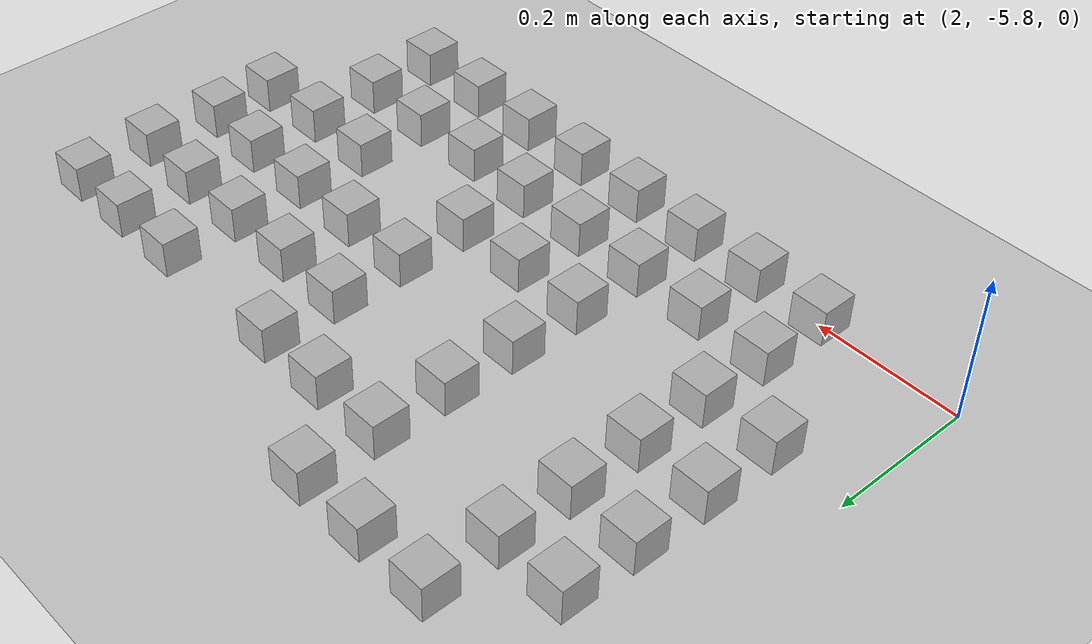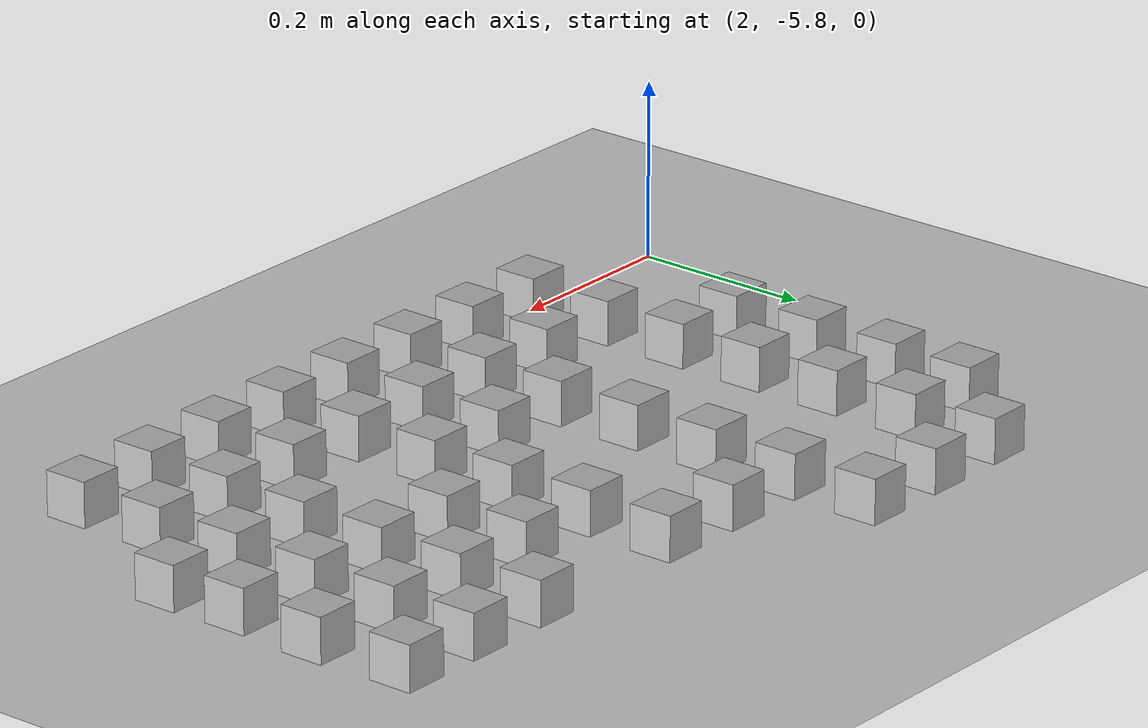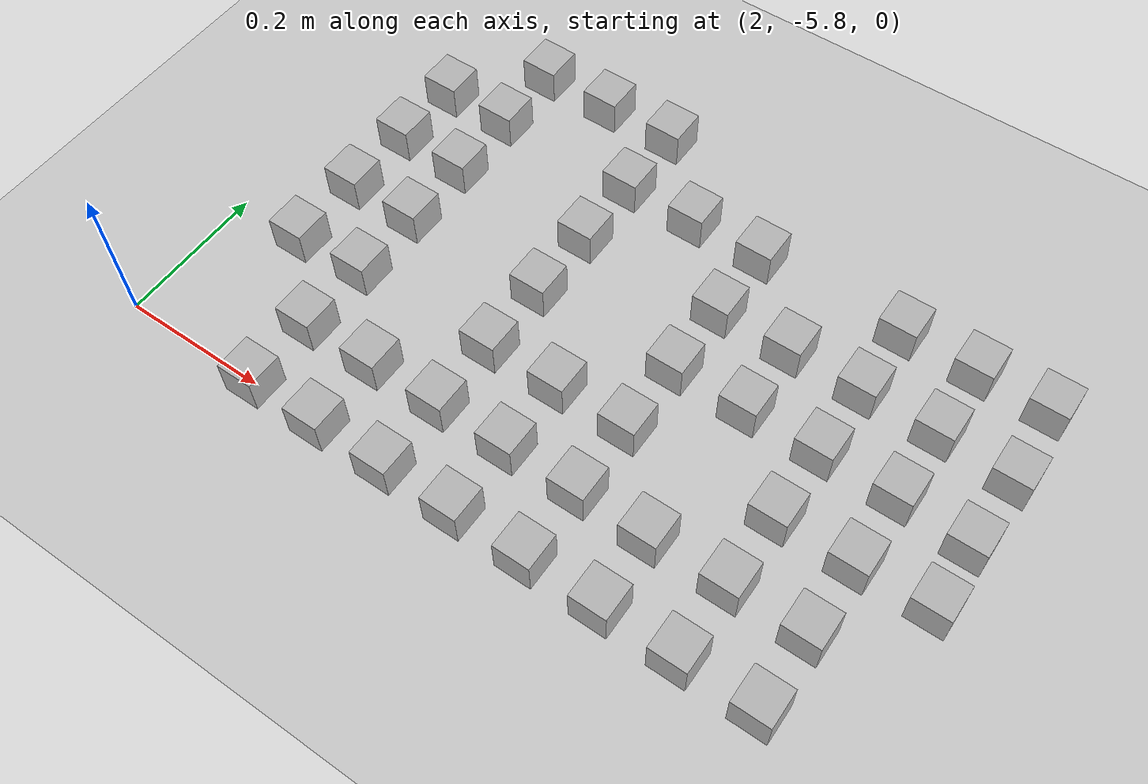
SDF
<sdf version="1.6">
 <world name="default">
  <model name="ground_plane">
   <static>1</static>
   <link name="link">
    <collision name="collision">
     <geometry><plane><normal>0 0 1</normal><size>100 100</size></plane></geometry>
     <surface><friction><ode><mu>100</mu><mu2>50</mu2></ode></friction></surface>
    </collision>
    <visual name="visual">
     <cast_shadows>0</cast_shadows>
     <geometry><plane><normal>0 0 1</normal><size>100 100</size></plane></geometry>
     <material>
      <script><uri>file://media/materials/scripts/gazebo.material</uri><name>Gazebo/Grey</name></script>
     </material>
    </visual>
   </link>
  </model>
  <model name="at128">
   <static>0</static>
   <link name="link">
    <inertial>
     <mass>0.01</mass>
     <inertia><ixx>4e-05</ixx><ixy>0</ixy><ixz>0</ixz><iyy>4e-05</iyy><iyz>0</iyz><izz>4e-05</izz></inertia>
    </inertial>
    <visual name="visual">
     <geometry><box><size>0.05 0.05 0.05</size></box></geometry>
     <material>
      <script>
       <uri>model://at0/materials/scripts</uri>
       <uri>model://at0/materials/textures</uri>
       <name>at0/Diffuse</name>
      </script>
     </material>
    </visual>
    <collision name="collision">
     <geometry><box><size>0.05 0.05 0.05</size></box></geometry>
     <surface><friction><ode><mu>0.8</mu><mu2>0.7</mu2></ode></friction></surface>
    </collision>
   </link>
   <pose>2.2 -5.8 0.025 0 -0 0</pose>
  </model>
  <model name="at129">
   <static>0</static>
   <link name="link">
    <inertial>
     <mass>0.01</mass>
     <inertia><ixx>4e-05</ixx><ixy>0</ixy><ixz>0</ixz><iyy>4e-05</iyy><iyz>0</iyz><izz>4e-05</izz></inertia>
    </inertial>
    <visual name="visual">
     <geometry><box><size>0.05 0.05 0.05</size></box></geometry>
     <material>
      <script>
       <uri>model://at0/materials/scripts</uri>
       <uri>model://at0/materials/textures</uri>
       <name>at0/Diffuse</name>
      </script>
     </material>
    </visual>
    <collision name="collision">
     <geometry><box><size>0.05 0.05 0.05</size></box></geometry>
     <surface><friction><ode><mu>0.8</mu><mu2>0.7</mu2></ode></friction></surface>
    </collision>
   </link>
   <pose>2.3 -5.8 0.025 0 -0 0</pose>
  </model>
  <model name="at130">
   <static>0</static>
   <link name="link">
    <inertial>
     <mass>0.01</mass>
     <inertia><ixx>4e-05</ixx><ixy>0</ixy><ixz>0</ixz><iyy>4e-05</iyy><iyz>0</iyz><izz>4e-05</izz></inertia>
    </inertial>
    <visual name="visual">
     <geometry><box><size>0.05 0.05 0.05</size></box></geometry>
     <material>
      <script>
       <uri>model://at0/materials/scripts</uri>
       <uri>model://at0/materials/textures</uri>
       <name>at0/Diffuse</name>
      </script>
     </material>
    </visual>
    <collision name="collision">
     <geometry><box><size>0.05 0.05 0.05</size></box></geometry>
     <surface><friction><ode><mu>0.8</mu><mu2>0.7</mu2></ode></friction></surface>
    </collision>
   </link>
   <pose>2.4 -5.8 0.025 0 -0 0</pose>
  </model>
  <model name="at131">
   <static>0</static>
   <link name="link">
    <inertial>
     <mass>0.01</mass>
     <inertia><ixx>4e-05</ixx><ixy>0</ixy><ixz>0</ixz><iyy>4e-05</iyy><iyz>0</iyz><izz>4e-05</izz></inertia>
    </inertial>
    <visual name="visual">
     <geometry><box><size>0.05 0.05 0.05</size></box></geometry>
     <material>
      <script>
       <uri>model://at0/materials/scripts</uri>
       <uri>model://at0/materials/textures</uri>
       <name>at0/Diffuse</name>
      </script>
     </material>
    </visual>
    <collision name="collision">
     <geometry><box><size>0.05 0.05 0.05</size></box></geometry>
     <surface><friction><ode><mu>0.8</mu><mu2>0.7</mu2></ode></friction></surface>
    </collision>
   </link>
   <pose>2.5 -5.8 0.025 0 -0 0</pose>
  </model>
  <model name="at132">
   <static>0</static>
   <link name="link">
    <inertial>
     <mass>0.01</mass>
     <inertia><ixx>4e-05</ixx><ixy>0</ixy><ixz>0</ixz><iyy>4e-05</iyy><iyz>0</iyz><izz>4e-05</izz></inertia>
    </inertial>
    <visual name="visual">
     <geometry><box><size>0.05 0.05 0.05</size></box></geometry>
     <material>
      <script>
       <uri>model://at0/materials/scripts</uri>
       <uri>model://at0/materials/textures</uri>
       <name>at0/Diffuse</name>
      </script>
     </material>
    </visual>
    <collision name="collision">
     <geometry><box><size>0.05 0.05 0.05</size></box></geometry>
     <surface><friction><ode><mu>0.8</mu><mu2>0.7</mu2></ode></friction></surface>
    </collision>
   </link>
   <pose>2.6 -5.8 0.025 0 -0 0</pose>
  </model>
  <model name="at133">
   <static>0</static>
   <link name="link">
    <inertial>
     <mass>0.01</mass>
     <inertia><ixx>4e-05</ixx><ixy>0</ixy><ixz>0</ixz><iyy>4e-05</iyy><iyz>0</iyz><izz>4e-05</izz></inertia>
    </inertial>
    <visual name="visual">
     <geometry><box><size>0.05 0.05 0.05</size></box></geometry>
     <material>
      <script>
       <uri>model://at0/materials/scripts</uri>
       <uri>model://at0/materials/textures</uri>
       <name>at0/Diffuse</name>
      </script>
     </material>
    </visual>
    <collision name="collision">
     <geometry><box><size>0.05 0.05 0.05</size></box></geometry>
     <surface><friction><ode><mu>0.8</mu><mu2>0.7</mu2></ode></friction></surface>
    </collision>
   </link>
   <pose>2.7 -5.8 0.025 0 -0 0</pose>
  </model>
  <model name="at134">
   <static>0</static>
   <link name="link">
    <inertial>
     <mass>0.01</mass>
     <inertia><ixx>4e-05</ixx><ixy>0</ixy><ixz>0</ixz><iyy>4e-05</iyy><iyz>0</iyz><izz>4e-05</izz></inertia>
    </inertial>
    <visual name="visual">
     <geometry><box><size>0.05 0.05 0.05</size></box></geometry>
     <material>
      <script>
       <uri>model://at0/materials/scripts</uri>
       <uri>model://at0/materials/textures</uri>
       <name>at0/Diffuse</name>
      </script>
     </material>
    </visual>
    <collision name="collision">
     <geometry><box><size>0.05 0.05 0.05</size></box></geometry>
     <surface><friction><ode><mu>0.8</mu><mu2>0.7</mu2></ode></friction></surface>
    </collision>
   </link>
   <pose>2.8 -5.8 0.025 0 -0 0</pose>
  </model>
  <model name="at135">
   <static>0</static>
   <link name="link">
    <inertial>
     <mass>0.01</mass>
     <inertia><ixx>4e-05</ixx><ixy>0</ixy><ixz>0</ixz><iyy>4e-05</iyy><iyz>0</iyz><izz>4e-05</izz></inertia>
    </inertial>
    <visual name="visual">
     <geometry><box><size>0.05 0.05 0.05</size></box></geometry>
     <material>
      <script>
       <uri>model://at0/materials/scripts</uri>
       <uri>model://at0/materials/textures</uri>
       <name>at0/Diffuse</name>
      </script>
     </material>
    </visual>
    <collision name="collision">
     <geometry><box><size>0.05 0.05 0.05</size></box></geometry>
     <surface><friction><ode><mu>0.8</mu><mu2>0.7</mu2></ode></friction></surface>
    </collision>
   </link>
   <pose>2.9 -5.8 0.025 0 -0 0</pose>
  </model>
  <model name="at136">
   <static>0</static>
   <link name="link">
    <inertial>
     <mass>0.01</mass>
     <inertia><ixx>4e-05</ixx><ixy>0</ixy><ixz>0</ixz><iyy>4e-05</iyy><iyz>0</iyz><izz>4e-05</izz></inertia>
    </inertial>
    <visual name="visual">
     <geometry><box><size>0.05 0.05 0.05</size></box></geometry>
     <material>
      <script>
       <uri>model://at0/materials/scripts</uri>
       <uri>model://at0/materials/textures</uri>
       <name>at0/Diffuse</name>
      </script>
     </material>
    </visual>
    <collision name="collision">
     <geometry><box><size>0.05 0.05 0.05</size></box></geometry>
     <surface><friction><ode><mu>0.8</mu><mu2>0.7</mu2></ode></friction></surface>
    </collision>
   </link>
   <pose>2.2 -5.7 0.025 0 -0 0</pose>
  </model>
  <model name="at137">
   <static>0</static>
   <link name="link">
    <inertial>
     <mass>0.01</mass>
     <inertia><ixx>4e-05</ixx><ixy>0</ixy><ixz>0</ixz><iyy>4e-05</iyy><iyz>0</iyz><izz>4e-05</izz></inertia>
    </inertial>
    <visual name="visual">
     <geometry><box><size>0.05 0.05 0.05</size></box></geometry>
     <material>
      <script>
       <uri>model://at0/materials/scripts</uri>
       <uri>model://at0/materials/textures</uri>
       <name>at0/Diffuse</name>
      </script>
     </material>
    </visual>
    <collision name="collision">
     <geometry><box><size>0.05 0.05 0.05</size></box></geometry>
     <surface><friction><ode><mu>0.8</mu><mu2>0.7</mu2></ode></friction></surface>
    </collision>
   </link>
   <pose>2.3 -5.7 0.025 0 -0 0</pose>
  </model>
  <model name="at138">
   <static>0</static>
   <link name="link">
    <inertial>
     <mass>0.01</mass>
     <inertia><ixx>4e-05</ixx><ixy>0</ixy><ixz>0</ixz><iyy>4e-05</iyy><iyz>0</iyz><izz>4e-05</izz></inertia>
    </inertial>
    <visual name="visual">
     <geometry><box><size>0.05 0.05 0.05</size></box></geometry>
     <material>
      <script>
       <uri>model://at0/materials/scripts</uri>
       <uri>model://at0/materials/textures</uri>
       <name>at0/Diffuse</name>
      </script>
     </material>
    </visual>
    <collision name="collision">
     <geometry><box><size>0.05 0.05 0.05</size></box></geometry>
     <surface><friction><ode><mu>0.8</mu><mu2>0.7</mu2></ode></friction></surface>
    </collision>
   </link>
   <pose>2.4 -5.7 0.025 0 -0 0</pose>
  </model>
  <model name="at139">
   <static>0</static>
   <link name="link">
    <inertial>
     <mass>0.01</mass>
     <inertia><ixx>4e-05</ixx><ixy>0</ixy><ixz>0</ixz><iyy>4e-05</iyy><iyz>0</iyz><izz>4e-05</izz></inertia>
    </inertial>
    <visual name="visual">
     <geometry><box><size>0.05 0.05 0.05</size></box></geometry>
     <material>
      <script>
       <uri>model://at0/materials/scripts</uri>
       <uri>model://at0/materials/textures</uri>
       <name>at0/Diffuse</name>
      </script>
     </material>
    </visual>
    <collision name="collision">
     <geometry><box><size>0.05 0.05 0.05</size></box></geometry>
     <surface><friction><ode><mu>0.8</mu><mu2>0.7</mu2></ode></friction></surface>
    </collision>
   </link>
   <pose>2.5 -5.7 0.025 0 -0 0</pose>
  </model>
  <model name="at140">
   <static>0</static>
   <link name="link">
    <inertial>
     <mass>0.01</mass>
     <inertia><ixx>4e-05</ixx><ixy>0</ixy><ixz>0</ixz><iyy>4e-05</iyy><iyz>0</iyz><izz>4e-05</izz></inertia>
    </inertial>
    <visual name="visual">
     <geometry><box><size>0.05 0.05 0.05</size></box></geometry>
     <material>
      <script>
       <uri>model://at0/materials/scripts</uri>
       <uri>model://at0/materials/textures</uri>
       <name>at0/Diffuse</name>
      </script>
     </material>
    </visual>
    <collision name="collision">
     <geometry><box><size>0.05 0.05 0.05</size></box></geometry>
     <surface><friction><ode><mu>0.8</mu><mu2>0.7</mu2></ode></friction></surface>
    </collision>
   </link>
   <pose>2.6 -5.7 0.025 0 -0 0</pose>
  </model>
  <model name="at141">
   <static>0</static>
   <link name="link">
    <inertial>
     <mass>0.01</mass>
     <inertia><ixx>4e-05</ixx><ixy>0</ixy><ixz>0</ixz><iyy>4e-05</iyy><iyz>0</iyz><izz>4e-05</izz></inertia>
    </inertial>
    <visual name="visual">
     <geometry><box><size>0.05 0.05 0.05</size></box></geometry>
     <material>
      <script>
       <uri>model://at0/materials/scripts</uri>
       <uri>model://at0/materials/textures</uri>
       <name>at0/Diffuse</name>
      </script>
     </material>
    </visual>
    <collision name="collision">
     <geometry><box><size>0.05 0.05 0.05</size></box></geometry>
     <surface><friction><ode><mu>0.8</mu><mu2>0.7</mu2></ode></friction></surface>
    </collision>
   </link>
   <pose>2.99664 -5.5962 0.025 0 -0 0</pose>
  </model>
  <model name="at142">
   <static>0</static>
   <link name="link">
    <inertial>
     <mass>0.01</mass>
     <inertia><ixx>4e-05</ixx><ixy>0</ixy><ixz>0</ixz><iyy>4e-05</iyy><iyz>0</iyz><izz>4e-05</izz></inertia>
    </inertial>
    <visual name="visual">
     <geometry><box><size>0.05 0.05 0.05</size></box></geometry>
     <material>
      <script>
       <uri>model://at0/materials/scripts</uri>
       <uri>model://at0/materials/textures</uri>
       <name>at0/Diffuse</name>
      </script>
     </material>
    </visual>
    <collision name="collision">
     <geometry><box><size>0.05 0.05 0.05</size></box></geometry>
     <surface><friction><ode><mu>0.8</mu><mu2>0.7</mu2></ode></friction></surface>
    </collision>
   </link>
   <pose>2.8 -5.7 0.025 0 -0 0</pose>
  </model>
  <model name="at143">
   <static>0</static>
   <link name="link">
    <inertial>
     <mass>0.01</mass>
     <inertia><ixx>4e-05</ixx><ixy>0</ixy><ixz>0</ixz><iyy>4e-05</iyy><iyz>0</iyz><izz>4e-05</izz></inertia>
    </inertial>
    <visual name="visual">
     <geometry><box><size>0.05 0.05 0.05</size></box></geometry>
     <material>
      <script>
       <uri>model://at0/materials/scripts</uri>
       <uri>model://at0/materials/textures</uri>
       <name>at0/Diffuse</name>
      </script>
     </material>
    </visual>
    <collision name="collision">
     <geometry><box><size>0.05 0.05 0.05</size></box></geometry>
     <surface><friction><ode><mu>0.8</mu><mu2>0.7</mu2></ode></friction></surface>
    </collision>
   </link>
   <pose>2.9 -5.7 0.025 0 -0 0</pose>
  </model>
  <model name="at144">
   <static>0</static>
   <link name="link">
    <inertial>
     <mass>0.01</mass>
     <inertia><ixx>4e-05</ixx><ixy>0</ixy><ixz>0</ixz><iyy>4e-05</iyy><iyz>0</iyz><izz>4e-05</izz></inertia>
    </inertial>
    <visual name="visual">
     <geometry><box><size>0.05 0.05 0.05</size></box></geometry>
     <material>
      <script>
       <uri>model://at0/materials/scripts</uri>
       <uri>model://at0/materials/textures</uri>
       <name>at0/Diffuse</name>
      </script>
     </material>
    </visual>
    <collision name="collision">
     <geometry><box><size>0.05 0.05 0.05</size></box></geometry>
     <surface><friction><ode><mu>0.8</mu><mu2>0.7</mu2></ode></friction></surface>
    </collision>
   </link>
   <pose>2.2 -5.6 0.025 0 -0 0</pose>
  </model>
  <model name="at145">
   <static>0</static>
   <link name="link">
    <inertial>
     <mass>0.01</mass>
     <inertia><ixx>4e-05</ixx><ixy>0</ixy><ixz>0</ixz><iyy>4e-05</iyy><iyz>0</iyz><izz>4e-05</izz></inertia>
    </inertial>
    <visual name="visual">
     <geometry><box><size>0.05 0.05 0.05</size></box></geometry>
     <material>
      <script>
       <uri>model://at0/materials/scripts</uri>
       <uri>model://at0/materials/textures</uri>
       <name>at0/Diffuse</name>
      </script>
     </material>
    </visual>
    <collision name="collision">
     <geometry><box><size>0.05 0.05 0.05</size></box></geometry>
     <surface><friction><ode><mu>0.8</mu><mu2>0.7</mu2></ode></friction></surface>
    </collision>
   </link>
   <pose>2.1036 -5.60476 0.025 0 -0 0</pose>
  </model>
  <model name="at146">
   <static>0</static>
   <link name="link">
    <inertial>
     <mass>0.01</mass>
     <inertia><ixx>4e-05</ixx><ixy>0</ixy><ixz>0</ixz><iyy>4e-05</iyy><iyz>0</iyz><izz>4e-05</izz></inertia>
    </inertial>
    <visual name="visual">
     <geometry><box><size>0.05 0.05 0.05</size></box></geometry>
     <material>
      <script>
       <uri>model://at0/materials/scripts</uri>
       <uri>model://at0/materials/textures</uri>
       <name>at0/Diffuse</name>
      </script>
     </material>
    </visual>
    <collision name="collision">
     <geometry><box><size>0.05 0.05 0.05</size></box></geometry>
     <surface><friction><ode><mu>0.8</mu><mu2>0.7</mu2></ode></friction></surface>
    </collision>
   </link>
   <pose>2.4 -5.6 0.025 0 -0 0</pose>
  </model>
  <model name="at147">
   <static>0</static>
   <link name="link">
    <inertial>
     <mass>0.01</mass>
     <inertia><ixx>4e-05</ixx><ixy>0</ixy><ixz>0</ixz><iyy>4e-05</iyy><iyz>0</iyz><izz>4e-05</izz></inertia>
    </inertial>
    <visual name="visual">
     <geometry><box><size>0.05 0.05 0.05</size></box></geometry>
     <material>
      <script>
       <uri>model://at0/materials/scripts</uri>
       <uri>model://at0/materials/textures</uri>
       <name>at0/Diffuse</name>
      </script>
     </material>
    </visual>
    <collision name="collision">
     <geometry><box><size>0.05 0.05 0.05</size></box></geometry>
     <surface><friction><ode><mu>0.8</mu><mu2>0.7</mu2></ode></friction></surface>
    </collision>
   </link>
   <pose>2.5 -5.6 0.025 0 -0 0</pose>
  </model>
  <model name="at148">
   <static>0</static>
   <link name="link">
    <inertial>
     <mass>0.01</mass>
     <inertia><ixx>4e-05</ixx><ixy>0</ixy><ixz>0</ixz><iyy>4e-05</iyy><iyz>0</iyz><izz>4e-05</izz></inertia>
    </inertial>
    <visual name="visual">
     <geometry><box><size>0.05 0.05 0.05</size></box></geometry>
     <material>
      <script>
       <uri>model://at0/materials/scripts</uri>
       <uri>model://at0/materials/textures</uri>
       <name>at0/Diffuse</name>
      </script>
     </material>
    </visual>
    <collision name="collision">
     <geometry><box><size>0.05 0.05 0.05</size></box></geometry>
     <surface><friction><ode><mu>0.8</mu><mu2>0.7</mu2></ode></friction></surface>
    </collision>
   </link>
   <pose>2.6 -5.6 0.025 0 -0 0</pose>
  </model>
  <model name="at149">
   <static>0</static>
   <link name="link">
    <inertial>
     <mass>0.01</mass>
     <inertia><ixx>4e-05</ixx><ixy>0</ixy><ixz>0</ixz><iyy>4e-05</iyy><iyz>0</iyz><izz>4e-05</izz></inertia>
    </inertial>
    <visual name="visual">
     <geometry><box><size>0.05 0.05 0.05</size></box></geometry>
     <material>
      <script>
       <uri>model://at0/materials/scripts</uri>
       <uri>model://at0/materials/textures</uri>
       <name>at0/Diffuse</name>
      </script>
     </material>
    </visual>
    <collision name="collision">
     <geometry><box><size>0.05 0.05 0.05</size></box></geometry>
     <surface><friction><ode><mu>0.8</mu><mu2>0.7</mu2></ode></friction></surface>
    </collision>
   </link>
   <pose>2.69719 -5.70241 0.025 0 -0 0</pose>
  </model>
  <model name="at150">
   <static>0</static>
   <link name="link">
    <inertial>
     <mass>0.01</mass>
     <inertia><ixx>4e-05</ixx><ixy>0</ixy><ixz>0</ixz><iyy>4e-05</iyy><iyz>0</iyz><izz>4e-05</izz></inertia>
    </inertial>
    <visual name="visual">
     <geometry><box><size>0.05 0.05 0.05</size></box></geometry>
     <material>
      <script>
       <uri>model://at0/materials/scripts</uri>
       <uri>model://at0/materials/textures</uri>
       <name>at0/Diffuse</name>
      </script>
     </material>
    </visual>
    <collision name="collision">
     <geometry><box><size>0.05 0.05 0.05</size></box></geometry>
     <surface><friction><ode><mu>0.8</mu><mu2>0.7</mu2></ode></friction></surface>
    </collision>
   </link>
   <pose>2.8 -5.6 0.025 0 -0 0</pose>
  </model>
  <model name="at151">
   <static>0</static>
   <link name="link">
    <inertial>
     <mass>0.01</mass>
     <inertia><ixx>4e-05</ixx><ixy>0</ixy><ixz>0</ixz><iyy>4e-05</iyy><iyz>0</iyz><izz>4e-05</izz></inertia>
    </inertial>
    <visual name="visual">
     <geometry><box><size>0.05 0.05 0.05</size></box></geometry>
     <material>
      <script>
       <uri>model://at0/materials/scripts</uri>
       <uri>model://at0/materials/textures</uri>
       <name>at0/Diffuse</name>
      </script>
     </material>
    </visual>
    <collision name="collision">
     <geometry><box><size>0.05 0.05 0.05</size></box></geometry>
     <surface><friction><ode><mu>0.8</mu><mu2>0.7</mu2></ode></friction></surface>
    </collision>
   </link>
   <pose>2.9 -5.6 0.025 0 -0 0</pose>
  </model>
  <model name="at152">
   <static>0</static>
   <link name="link">
    <inertial>
     <mass>0.01</mass>
     <inertia><ixx>4e-05</ixx><ixy>0</ixy><ixz>0</ixz><iyy>4e-05</iyy><iyz>0</iyz><izz>4e-05</izz></inertia>
    </inertial>
    <visual name="visual">
     <geometry><box><size>0.05 0.05 0.05</size></box></geometry>
     <material>
      <script>
       <uri>model://at0/materials/scripts</uri>
       <uri>model://at0/materials/textures</uri>
       <name>at0/Diffuse</name>
      </script>
     </material>
    </visual>
    <collision name="collision">
     <geometry><box><size>0.05 0.05 0.05</size></box></geometry>
     <surface><friction><ode><mu>0.8</mu><mu2>0.7</mu2></ode></friction></surface>
    </collision>
   </link>
   <pose>2.2 -5.5 0.025 0 -0 0</pose>
  </model>
  <model name="at153">
   <static>0</static>
   <link name="link">
    <inertial>
     <mass>0.01</mass>
     <inertia><ixx>4e-05</ixx><ixy>0</ixy><ixz>0</ixz><iyy>4e-05</iyy><iyz>0</iyz><izz>4e-05</izz></inertia>
    </inertial>
    <visual name="visual">
     <geometry><box><size>0.05 0.05 0.05</size></box></geometry>
     <material>
      <script>
       <uri>model://at0/materials/scripts</uri>
       <uri>model://at0/materials/textures</uri>
       <name>at0/Diffuse</name>
      </script>
     </material>
    </visual>
    <collision name="collision">
     <geometry><box><size>0.05 0.05 0.05</size></box></geometry>
     <surface><friction><ode><mu>0.8</mu><mu2>0.7</mu2></ode></friction></surface>
    </collision>
   </link>
   <pose>2.10354 -5.49982 0.025 0 -0 0</pose>
  </model>
  <model name="at154">
   <static>0</static>
   <link name="link">
    <inertial>
     <mass>0.01</mass>
     <inertia><ixx>4e-05</ixx><ixy>0</ixy><ixz>0</ixz><iyy>4e-05</iyy><iyz>0</iyz><izz>4e-05</izz></inertia>
    </inertial>
    <visual name="visual">
     <geometry><box><size>0.05 0.05 0.05</size></box></geometry>
     <material>
      <script>
       <uri>model://at0/materials/scripts</uri>
       <uri>model://at0/materials/textures</uri>
       <name>at0/Diffuse</name>
      </script>
     </material>
    </visual>
    <collision name="collision">
     <geometry><box><size>0.05 0.05 0.05</size></box></geometry>
     <surface><friction><ode><mu>0.8</mu><mu2>0.7</mu2></ode></friction></surface>
    </collision>
   </link>
   <pose>2.4 -5.5 0.025 0 -0 0</pose>
  </model>
  <model name="at155">
   <static>0</static>
   <link name="link">
    <inertial>
     <mass>0.01</mass>
     <inertia><ixx>4e-05</ixx><ixy>0</ixy><ixz>0</ixz><iyy>4e-05</iyy><iyz>0</iyz><izz>4e-05</izz></inertia>
    </inertial>
    <visual name="visual">
     <geometry><box><size>0.05 0.05 0.05</size></box></geometry>
     <material>
      <script>
       <uri>model://at0/materials/scripts</uri>
       <uri>model://at0/materials/textures</uri>
       <name>at0/Diffuse</name>
      </script>
     </material>
    </visual>
    <collision name="collision">
     <geometry><box><size>0.05 0.05 0.05</size></box></geometry>
     <surface><friction><ode><mu>0.8</mu><mu2>0.7</mu2></ode></friction></surface>
    </collision>
   </link>
   <pose>2.99477 -5.50801 0.025 0 -0 0</pose>
  </model>
  <model name="at156">
   <static>0</static>
   <link name="link">
    <inertial>
     <mass>0.01</mass>
     <inertia><ixx>4e-05</ixx><ixy>0</ixy><ixz>0</ixz><iyy>4e-05</iyy><iyz>0</iyz><izz>4e-05</izz></inertia>
    </inertial>
    <visual name="visual">
     <geometry><box><size>0.05 0.05 0.05</size></box></geometry>
     <material>
      <script>
       <uri>model://at0/materials/scripts</uri>
       <uri>model://at0/materials/textures</uri>
       <name>at0/Diffuse</name>
      </script>
     </material>
    </visual>
    <collision name="collision">
     <geometry><box><size>0.05 0.05 0.05</size></box></geometry>
     <surface><friction><ode><mu>0.8</mu><mu2>0.7</mu2></ode></friction></surface>
    </collision>
   </link>
   <pose>2.6 -5.5 0.025 0 -0 0</pose>
  </model>
  <model name="at157">
   <static>0</static>
   <link name="link">
    <inertial>
     <mass>0.01</mass>
     <inertia><ixx>4e-05</ixx><ixy>0</ixy><ixz>0</ixz><iyy>4e-05</iyy><iyz>0</iyz><izz>4e-05</izz></inertia>
    </inertial>
    <visual name="visual">
     <geometry><box><size>0.05 0.05 0.05</size></box></geometry>
     <material>
      <script>
       <uri>model://at0/materials/scripts</uri>
       <uri>model://at0/materials/textures</uri>
       <name>at0/Diffuse</name>
      </script>
     </material>
    </visual>
    <collision name="collision">
     <geometry><box><size>0.05 0.05 0.05</size></box></geometry>
     <surface><friction><ode><mu>0.8</mu><mu2>0.7</mu2></ode></friction></surface>
    </collision>
   </link>
   <pose>2.7 -5.5 0.025 0 -0 0</pose>
  </model>
  <model name="at158">
   <static>0</static>
   <link name="link">
    <inertial>
     <mass>0.01</mass>
     <inertia><ixx>4e-05</ixx><ixy>0</ixy><ixz>0</ixz><iyy>4e-05</iyy><iyz>0</iyz><izz>4e-05</izz></inertia>
    </inertial>
    <visual name="visual">
     <geometry><box><size>0.05 0.05 0.05</size></box></geometry>
     <material>
      <script>
       <uri>model://at0/materials/scripts</uri>
       <uri>model://at0/materials/textures</uri>
       <name>at0/Diffuse</name>
      </script>
     </material>
    </visual>
    <collision name="collision">
     <geometry><box><size>0.05 0.05 0.05</size></box></geometry>
     <surface><friction><ode><mu>0.8</mu><mu2>0.7</mu2></ode></friction></surface>
    </collision>
   </link>
   <pose>2.8 -5.5 0.025 0 -0 0</pose>
  </model>
  <model name="at159">
   <static>0</static>
   <link name="link">
    <inertial>
     <mass>0.01</mass>
     <inertia><ixx>4e-05</ixx><ixy>0</ixy><ixz>0</ixz><iyy>4e-05</iyy><iyz>0</iyz><izz>4e-05</izz></inertia>
    </inertial>
    <visual name="visual">
     <geometry><box><size>0.05 0.05 0.05</size></box></geometry>
     <material>
      <script>
       <uri>model://at0/materials/scripts</uri>
       <uri>model://at0/materials/textures</uri>
       <name>at0/Diffuse</name>
      </script>
     </material>
    </visual>
    <collision name="collision">
     <geometry><box><size>0.05 0.05 0.05</size></box></geometry>
     <surface><friction><ode><mu>0.8</mu><mu2>0.7</mu2></ode></friction></surface>
    </collision>
   </link>
   <pose>2.9 -5.5 0.025 0 -0 0</pose>
  </model>
  <model name="at160">
   <static>0</static>
   <link name="link">
    <inertial>
     <mass>0.01</mass>
     <inertia><ixx>4e-05</ixx><ixy>0</ixy><ixz>0</ixz><iyy>4e-05</iyy><iyz>0</iyz><izz>4e-05</izz></inertia>
    </inertial>
    <visual name="visual">
     <geometry><box><size>0.05 0.05 0.05</size></box></geometry>
     <material>
      <script>
       <uri>model://at0/materials/scripts</uri>
       <uri>model://at0/materials/textures</uri>
       <name>at0/Diffuse</name>
      </script>
     </material>
    </visual>
    <collision name="collision">
     <geometry><box><size>0.05 0.05 0.05</size></box></geometry>
     <surface><friction><ode><mu>0.8</mu><mu2>0.7</mu2></ode></friction></surface>
    </collision>
   </link>
   <pose>2.2 -5.4 0.025 0 -0 0</pose>
  </model>
  <model name="at161">
   <static>0</static>
   <link name="link">
    <inertial>
     <mass>0.01</mass>
     <inertia><ixx>4e-05</ixx><ixy>0</ixy><ixz>0</ixz><iyy>4e-05</iyy><iyz>0</iyz><izz>4e-05</izz></inertia>
    </inertial>
    <visual name="visual">
     <geometry><box><size>0.05 0.05 0.05</size></box></geometry>
     <material>
      <script>
       <uri>model://at0/materials/scripts</uri>
       <uri>model://at0/materials/textures</uri>
       <name>at0/Diffuse</name>
      </script>
     </material>
    </visual>
    <collision name="collision">
     <geometry><box><size>0.05 0.05 0.05</size></box></geometry>
     <surface><friction><ode><mu>0.8</mu><mu2>0.7</mu2></ode></friction></surface>
    </collision>
   </link>
   <pose>2.10438 -5.39714 0.025 0 -0 0</pose>
  </model>
  <model name="at162">
   <static>0</static>
   <link name="link">
    <inertial>
     <mass>0.01</mass>
     <inertia><ixx>4e-05</ixx><ixy>0</ixy><ixz>0</ixz><iyy>4e-05</iyy><iyz>0</iyz><izz>4e-05</izz></inertia>
    </inertial>
    <visual name="visual">
     <geometry><box><size>0.05 0.05 0.05</size></box></geometry>
     <material>
      <script>
       <uri>model://at0/materials/scripts</uri>
       <uri>model://at0/materials/textures</uri>
       <name>at0/Diffuse</name>
      </script>
     </material>
    </visual>
    <collision name="collision">
     <geometry><box><size>0.05 0.05 0.05</size></box></geometry>
     <surface><friction><ode><mu>0.8</mu><mu2>0.7</mu2></ode></friction></surface>
    </collision>
   </link>
   <pose>2.4 -5.4 0.025 0 -0 0</pose>
  </model>
  <model name="at163">
   <static>0</static>
   <link name="link">
    <inertial>
     <mass>0.01</mass>
     <inertia><ixx>4e-05</ixx><ixy>0</ixy><ixz>0</ixz><iyy>4e-05</iyy><iyz>0</iyz><izz>4e-05</izz></inertia>
    </inertial>
    <visual name="visual">
     <geometry><box><size>0.05 0.05 0.05</size></box></geometry>
     <material>
      <script>
       <uri>model://at0/materials/scripts</uri>
       <uri>model://at0/materials/textures</uri>
       <name>at0/Diffuse</name>
      </script>
     </material>
    </visual>
    <collision name="collision">
     <geometry><box><size>0.05 0.05 0.05</size></box></geometry>
     <surface><friction><ode><mu>0.8</mu><mu2>0.7</mu2></ode></friction></surface>
    </collision>
   </link>
   <pose>2.99947 -5.40657 0.025 0 -0 0</pose>
  </model>
  <model name="at164">
   <static>0</static>
   <link name="link">
    <inertial>
     <mass>0.01</mass>
     <inertia><ixx>4e-05</ixx><ixy>0</ixy><ixz>0</ixz><iyy>4e-05</iyy><iyz>0</iyz><izz>4e-05</izz></inertia>
    </inertial>
    <visual name="visual">
     <geometry><box><size>0.05 0.05 0.05</size></box></geometry>
     <material>
      <script>
       <uri>model://at0/materials/scripts</uri>
       <uri>model://at0/materials/textures</uri>
       <name>at0/Diffuse</name>
      </script>
     </material>
    </visual>
    <collision name="collision">
     <geometry><box><size>0.05 0.05 0.05</size></box></geometry>
     <surface><friction><ode><mu>0.8</mu><mu2>0.7</mu2></ode></friction></surface>
    </collision>
   </link>
   <pose>2.6 -5.4 0.025 0 -0 0</pose>
  </model>
  <model name="at165">
   <static>0</static>
   <link name="link">
    <inertial>
     <mass>0.01</mass>
     <inertia><ixx>4e-05</ixx><ixy>0</ixy><ixz>0</ixz><iyy>4e-05</iyy><iyz>0</iyz><izz>4e-05</izz></inertia>
    </inertial>
    <visual name="visual">
     <geometry><box><size>0.05 0.05 0.05</size></box></geometry>
     <material>
      <script>
       <uri>model://at0/materials/scripts</uri>
       <uri>model://at0/materials/textures</uri>
       <name>at0/Diffuse</name>
      </script>
     </material>
    </visual>
    <collision name="collision">
     <geometry><box><size>0.05 0.05 0.05</size></box></geometry>
     <surface><friction><ode><mu>0.8</mu><mu2>0.7</mu2></ode></friction></surface>
    </collision>
   </link>
   <pose>2.7 -5.4 0.025 0 -0 0</pose>
  </model>
  <model name="at166">
   <static>0</static>
   <link name="link">
    <inertial>
     <mass>0.01</mass>
     <inertia><ixx>4e-05</ixx><ixy>0</ixy><ixz>0</ixz><iyy>4e-05</iyy><iyz>0</iyz><izz>4e-05</izz></inertia>
    </inertial>
    <visual name="visual">
     <geometry><box><size>0.05 0.05 0.05</size></box></geometry>
     <material>
      <script>
       <uri>model://at0/materials/scripts</uri>
       <uri>model://at0/materials/textures</uri>
       <name>at0/Diffuse</name>
      </script>
     </material>
    </visual>
    <collision name="collision">
     <geometry><box><size>0.05 0.05 0.05</size></box></geometry>
     <surface><friction><ode><mu>0.8</mu><mu2>0.7</mu2></ode></friction></surface>
    </collision>
   </link>
   <pose>2.8 -5.4 0.025 0 -0 0</pose>
  </model>
  <model name="at167">
   <static>0</static>
   <link name="link">
    <inertial>
     <mass>0.01</mass>
     <inertia><ixx>4e-05</ixx><ixy>0</ixy><ixz>0</ixz><iyy>4e-05</iyy><iyz>0</iyz><izz>4e-05</izz></inertia>
    </inertial>
    <visual name="visual">
     <geometry><box><size>0.05 0.05 0.05</size></box></geometry>
     <material>
      <script>
       <uri>model://at0/materials/scripts</uri>
       <uri>model://at0/materials/textures</uri>
       <name>at0/Diffuse</name>
      </script>
     </material>
    </visual>
    <collision name="collision">
     <geometry><box><size>0.05 0.05 0.05</size></box></geometry>
     <surface><friction><ode><mu>0.8</mu><mu2>0.7</mu2></ode></friction></surface>
    </collision>
   </link>
   <pose>2.9 -5.4 0.025 0 -0 0</pose>
  </model>
  <model name="at168">
   <static>0</static>
   <link name="link">
    <inertial>
     <mass>0.01</mass>
     <inertia><ixx>4e-05</ixx><ixy>0</ixy><ixz>0</ixz><iyy>4e-05</iyy><iyz>0</iyz><izz>4e-05</izz></inertia>
    </inertial>
    <visual name="visual">
     <geometry><box><size>0.05 0.05 0.05</size></box></geometry>
     <material>
      <script>
       <uri>model://at0/materials/scripts</uri>
       <uri>model://at0/materials/textures</uri>
       <name>at0/Diffuse</name>
      </script>
     </material>
    </visual>
    <collision name="collision">
     <geometry><box><size>0.05 0.05 0.05</size></box></geometry>
     <surface><friction><ode><mu>0.8</mu><mu2>0.7</mu2></ode></friction></surface>
    </collision>
   </link>
   <pose>2.2 -5.3 0.025 0 -0 0</pose>
  </model>
  <model name="at169">
   <static>0</static>
   <link name="link">
    <inertial>
     <mass>0.01</mass>
     <inertia><ixx>4e-05</ixx><ixy>0</ixy><ixz>0</ixz><iyy>4e-05</iyy><iyz>0</iyz><izz>4e-05</izz></inertia>
    </inertial>
    <visual name="visual">
     <geometry><box><size>0.05 0.05 0.05</size></box></geometry>
     <material>
      <script>
       <uri>model://at0/materials/scripts</uri>
       <uri>model://at0/materials/textures</uri>
       <name>at0/Diffuse</name>
      </script>
     </material>
    </visual>
    <collision name="collision">
     <geometry><box><size>0.05 0.05 0.05</size></box></geometry>
     <surface><friction><ode><mu>0.8</mu><mu2>0.7</mu2></ode></friction></surface>
    </collision>
   </link>
   <pose>2.1077 -5.3001 0.025 0 -0 0</pose>
  </model>
  <model name="at170">
   <static>0</static>
   <link name="link">
    <inertial>
     <mass>0.01</mass>
     <inertia><ixx>4e-05</ixx><ixy>0</ixy><ixz>0</ixz><iyy>4e-05</iyy><iyz>0</iyz><izz>4e-05</izz></inertia>
    </inertial>
    <visual name="visual">
     <geometry><box><size>0.05 0.05 0.05</size></box></geometry>
     <material>
      <script>
       <uri>model://at0/materials/scripts</uri>
       <uri>model://at0/materials/textures</uri>
       <name>at0/Diffuse</name>
      </script>
     </material>
    </visual>
    <collision name="collision">
     <geometry><box><size>0.05 0.05 0.05</size></box></geometry>
     <surface><friction><ode><mu>0.8</mu><mu2>0.7</mu2></ode></friction></surface>
    </collision>
   </link>
   <pose>2.4 -5.3 0.025 0 -0 0</pose>
  </model>
  <model name="at171">
   <static>0</static>
   <link name="link">
    <inertial>
     <mass>0.01</mass>
     <inertia><ixx>4e-05</ixx><ixy>0</ixy><ixz>0</ixz><iyy>4e-05</iyy><iyz>0</iyz><izz>4e-05</izz></inertia>
    </inertial>
    <visual name="visual">
     <geometry><box><size>0.05 0.05 0.05</size></box></geometry>
     <material>
      <script>
       <uri>model://at0/materials/scripts</uri>
       <uri>model://at0/materials/textures</uri>
       <name>at0/Diffuse</name>
      </script>
     </material>
    </visual>
    <collision name="collision">
     <geometry><box><size>0.05 0.05 0.05</size></box></geometry>
     <surface><friction><ode><mu>0.8</mu><mu2>0.7</mu2></ode></friction></surface>
    </collision>
   </link>
   <pose>2.5 -5.3 0.025 0 -0 0</pose>
  </model>
  <model name="at172">
   <static>0</static>
   <link name="link">
    <inertial>
     <mass>0.01</mass>
     <inertia><ixx>4e-05</ixx><ixy>0</ixy><ixz>0</ixz><iyy>4e-05</iyy><iyz>0</iyz><izz>4e-05</izz></inertia>
    </inertial>
    <visual name="visual">
     <geometry><box><size>0.05 0.05 0.05</size></box></geometry>
     <material>
      <script>
       <uri>model://at0/materials/scripts</uri>
       <uri>model://at0/materials/textures</uri>
       <name>at0/Diffuse</name>
      </script>
     </material>
    </visual>
    <collision name="collision">
     <geometry><box><size>0.05 0.05 0.05</size></box></geometry>
     <surface><friction><ode><mu>0.8</mu><mu2>0.7</mu2></ode></friction></surface>
    </collision>
   </link>
   <pose>2.6 -5.3 0.025 0 -0 0</pose>
  </model>
  <model name="at173">
   <static>0</static>
   <link name="link">
    <inertial>
     <mass>0.01</mass>
     <inertia><ixx>4e-05</ixx><ixy>0</ixy><ixz>0</ixz><iyy>4e-05</iyy><iyz>0</iyz><izz>4e-05</izz></inertia>
    </inertial>
    <visual name="visual">
     <geometry><box><size>0.05 0.05 0.05</size></box></geometry>
     <material>
      <script>
       <uri>model://at0/materials/scripts</uri>
       <uri>model://at0/materials/textures</uri>
       <name>at0/Diffuse</name>
      </script>
     </material>
    </visual>
    <collision name="collision">
     <geometry><box><size>0.05 0.05 0.05</size></box></geometry>
     <surface><friction><ode><mu>0.8</mu><mu2>0.7</mu2></ode></friction></surface>
    </collision>
   </link>
   <pose>2.99488 -5.30004 0.025 0 -0 0</pose>
  </model>
  <model name="at174">
   <static>0</static>
   <link name="link">
    <inertial>
     <mass>0.01</mass>
     <inertia><ixx>4e-05</ixx><ixy>0</ixy><ixz>0</ixz><iyy>4e-05</iyy><iyz>0</iyz><izz>4e-05</izz></inertia>
    </inertial>
    <visual name="visual">
     <geometry><box><size>0.05 0.05 0.05</size></box></geometry>
     <material>
      <script>
       <uri>model://at0/materials/scripts</uri>
       <uri>model://at0/materials/textures</uri>
       <name>at0/Diffuse</name>
      </script>
     </material>
    </visual>
    <collision name="collision">
     <geometry><box><size>0.05 0.05 0.05</size></box></geometry>
     <surface><friction><ode><mu>0.8</mu><mu2>0.7</mu2></ode></friction></surface>
    </collision>
   </link>
   <pose>2.8 -5.3 0.025 0 -0 0</pose>
  </model>
  <model name="at175">
   <static>0</static>
   <link name="link">
    <inertial>
     <mass>0.01</mass>
     <inertia><ixx>4e-05</ixx><ixy>0</ixy><ixz>0</ixz><iyy>4e-05</iyy><iyz>0</iyz><izz>4e-05</izz></inertia>
    </inertial>
    <visual name="visual">
     <geometry><box><size>0.05 0.05 0.05</size></box></geometry>
     <material>
      <script>
       <uri>model://at0/materials/scripts</uri>
       <uri>model://at0/materials/textures</uri>
       <name>at0/Diffuse</name>
      </script>
     </material>
    </visual>
    <collision name="collision">
     <geometry><box><size>0.05 0.05 0.05</size></box></geometry>
     <surface><friction><ode><mu>0.8</mu><mu2>0.7</mu2></ode></friction></surface>
    </collision>
   </link>
   <pose>2.9 -5.3 0.025 0 -0 0</pose>
  </model>
  <model name="at176">
   <static>0</static>
   <link name="link">
    <inertial>
     <mass>0.01</mass>
     <inertia><ixx>4e-05</ixx><ixy>0</ixy><ixz>0</ixz><iyy>4e-05</iyy><iyz>0</iyz><izz>4e-05</izz></inertia>
    </inertial>
    <visual name="visual">
     <geometry><box><size>0.05 0.05 0.05</size></box></geometry>
     <material>
      <script>
       <uri>model://at0/materials/scripts</uri>
       <uri>model://at0/materials/textures</uri>
       <name>at0/Diffuse</name>
      </script>
     </material>
    </visual>
    <collision name="collision">
     <geometry><box><size>0.05 0.05 0.05</size></box></geometry>
     <surface><friction><ode><mu>0.8</mu><mu2>0.7</mu2></ode></friction></surface>
    </collision>
   </link>
   <pose>2.2 -5.2 0.025 0 -0 0</pose>
  </model>
  <model name="at177">
   <static>0</static>
   <link name="link">
    <inertial>
     <mass>0.01</mass>
     <inertia><ixx>4e-05</ixx><ixy>0</ixy><ixz>0</ixz><iyy>4e-05</iyy><iyz>0</iyz><izz>4e-05</izz></inertia>
    </inertial>
    <visual name="visual">
     <geometry><box><size>0.05 0.05 0.05</size></box></geometry>
     <material>
      <script>
       <uri>model://at0/materials/scripts</uri>
       <uri>model://at0/materials/textures</uri>
       <name>at0/Diffuse</name>
      </script>
     </material>
    </visual>
    <collision name="collision">
     <geometry><box><size>0.05 0.05 0.05</size></box></geometry>
     <surface><friction><ode><mu>0.8</mu><mu2>0.7</mu2></ode></friction></surface>
    </collision>
   </link>
   <pose>2.3 -5.2 0.025 0 -0 0</pose>
  </model>
  <model name="at178">
   <static>0</static>
   <link name="link">
    <inertial>
     <mass>0.01</mass>
     <inertia><ixx>4e-05</ixx><ixy>0</ixy><ixz>0</ixz><iyy>4e-05</iyy><iyz>0</iyz><izz>4e-05</izz></inertia>
    </inertial>
    <visual name="visual">
     <geometry><box><size>0.05 0.05 0.05</size></box></geometry>
     <material>
      <script>
       <uri>model://at0/materials/scripts</uri>
       <uri>model://at0/materials/textures</uri>
       <name>at0/Diffuse</name>
      </script>
     </material>
    </visual>
    <collision name="collision">
     <geometry><box><size>0.05 0.05 0.05</size></box></geometry>
     <surface><friction><ode><mu>0.8</mu><mu2>0.7</mu2></ode></friction></surface>
    </collision>
   </link>
   <pose>2.4 -5.2 0.025 0 -0 0</pose>
  </model>
 </world>
</sdf>
